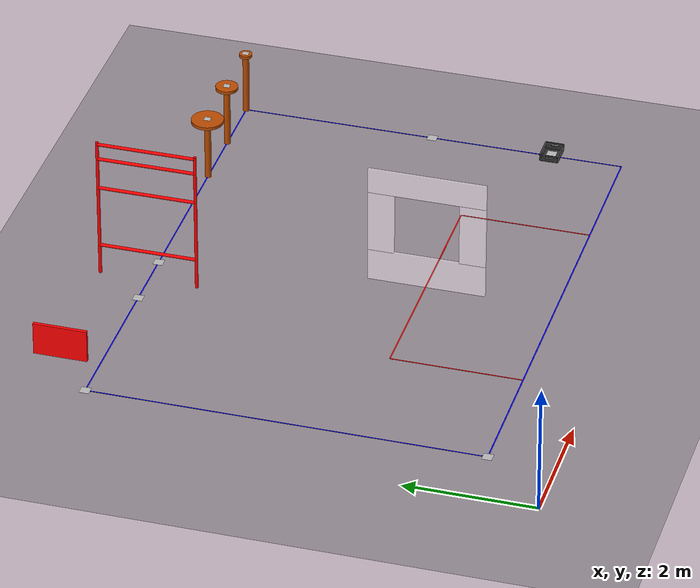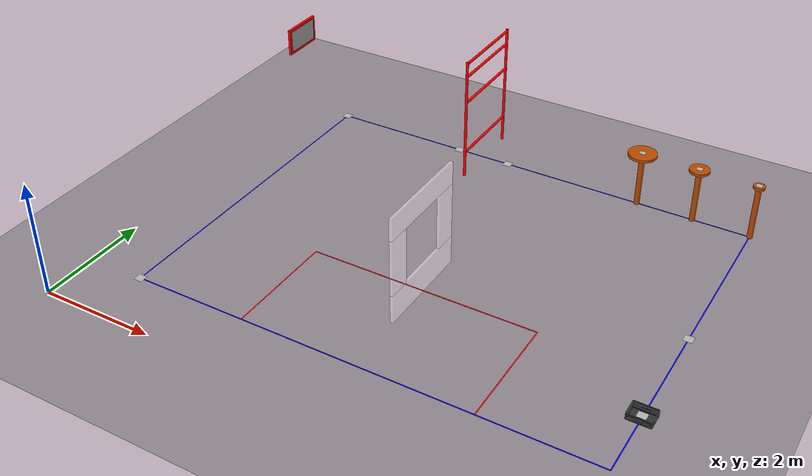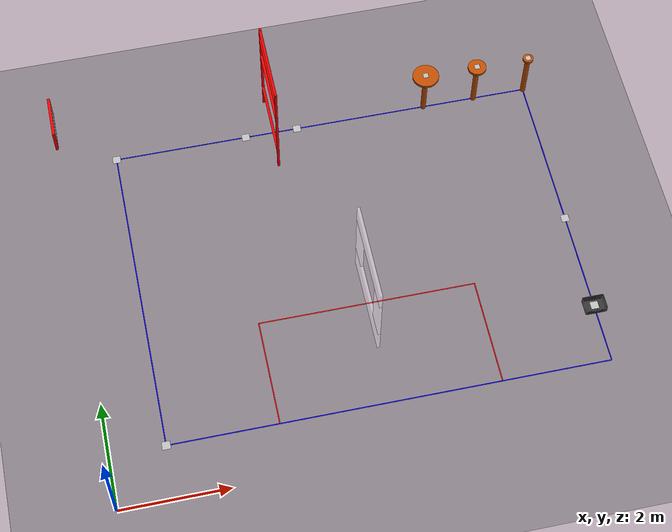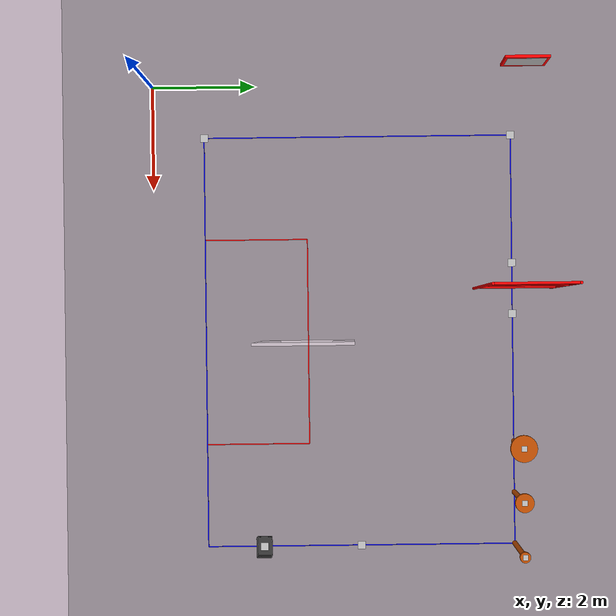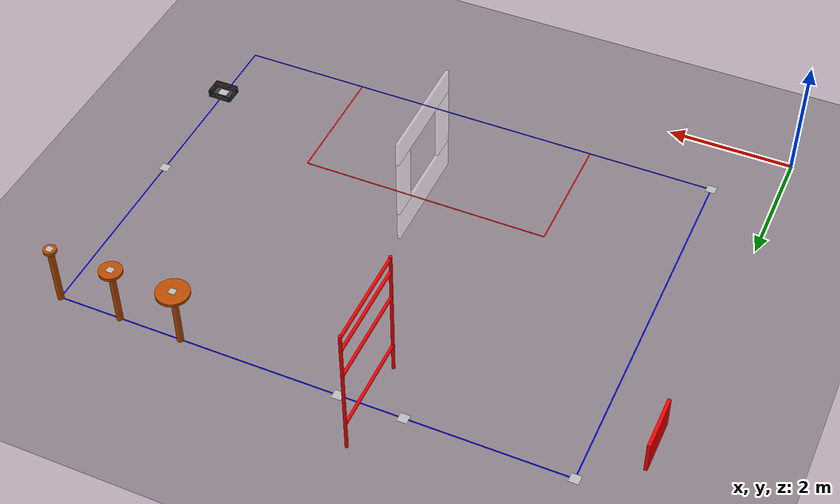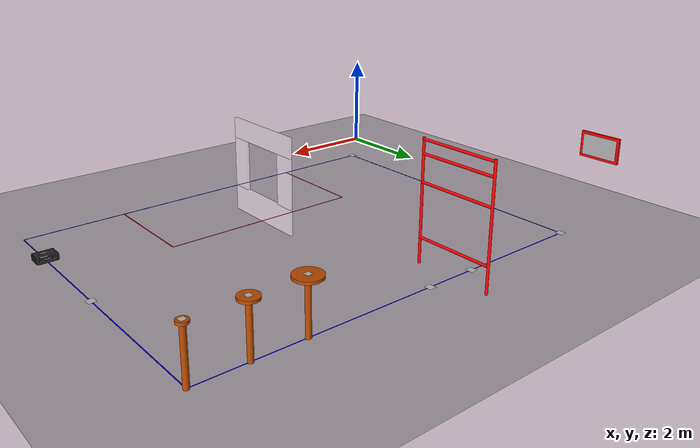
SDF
<sdf version="1.9">
 <world name="indoor">
  <physics type="ode">
   <max_step_size>0.004</max_step_size>
   <real_time_factor>1.0</real_time_factor>
   <real_time_update_rate>250</real_time_update_rate>
  </physics>
  <plugin name="gz::sim::systems::Physics" filename="gz-sim-physics-system"/>
  <plugin name="gz::sim::systems::UserCommands" filename="gz-sim-user-commands-system"/>
  <plugin name="gz::sim::systems::SceneBroadcaster" filename="gz-sim-scene-broadcaster-system"/>
  <plugin name="gz::sim::systems::Contact" filename="gz-sim-contact-system"/>
  <plugin name="gz::sim::systems::Imu" filename="gz-sim-imu-system"/>
  <plugin name="gz::sim::systems::AirPressure" filename="gz-sim-air-pressure-system"/>
  <plugin name="gz::sim::systems::Sensors" filename="gz-sim-sensors-system">
   <render_engine>ogre2</render_engine>
  </plugin>
  <gravity>0 0 -9.8</gravity>
  <magnetic_field>6e-06 2.3e-05 -4.2e-05</magnetic_field>
  <atmosphere type="adiabatic"/>
  <scene>
   <grid>false</grid>
   <ambient>0.4 0.4 0.4 1</ambient>
   <background>0.7 0.7 0.7 1</background>
   <shadows>true</shadows>
  </scene>
  <model name="ground_plane">
   <static>true</static>
   <link name="link">
    <collision name="collision">
     <geometry><plane><normal>0 0 1</normal><size>1 1</size></plane></geometry>
    </collision>
    <visual name="visual">
     <geometry><plane><normal>0 0 1</normal><size>100 100</size></plane></geometry>
     <material><ambient>0.2 0.2 0.2 1</ambient><diffuse>0.2 0.2 0.2 1</diffuse></material>
    </visual>
    <inertial>
     <mass>1</mass>
     <inertia><ixx>1</ixx><ixy>0</ixy><ixz>0</ixz><iyy>1</iyy><iyz>0</iyz><izz>1</izz></inertia>
    </inertial>
   </link>
  </model>
  <light name="sunUTC" type="directional">
   <pose>0 0 500 0 0 0</pose>
   <intensity>1</intensity>
   <direction>0 0 -1</direction>
   <diffuse>0.904 0.904 0.904 1</diffuse>
   <specular>0.271 0.271 0.271 1</specular>
   <attenuation><range>2000</range><linear>0</linear><constant>1</constant><quadratic>0</quadratic></attenuation>
  </light>
  <light name="directional_light1" type="directional">
   <pose>500 0 500 0 0 0</pose>
   <direction>-1 0 -1</direction>
   <intensity>0.5</intensity>
   <diffuse>0.8 0.8 0.8 1</diffuse>
   <specular>0.5 0.5 0.5 1</specular>
  </light>
  <light name="directional_light2" type="directional">
   <pose>0 500 500 0 0 0</pose>
   <direction>0 -1 -1</direction>
   <intensity>0.5</intensity>
   <diffuse>0.8 0.8 0.8 1</diffuse>
   <specular>0.5 0.5 0.5 1</specular>
  </light>
  <light name="directional_light3" type="directional">
   <pose>-500 0 500 0 0 0</pose>
   <direction>-1 0 -1</direction>
   <intensity>0.5</intensity>
   <diffuse>0.8 0.8 0.8 1</diffuse>
   <specular>0.5 0.5 0.5 1</specular>
  </light>
  <light name="directional_light4" type="directional">
   <pose>0 -500 500 0 0 0</pose>
   <direction>0 -1 -1</direction>
   <intensity>0.5</intensity>
   <diffuse>0.8 0.8 0.8 1</diffuse>
   <specular>0.5 0.5 0.5 1</specular>
  </light>
  <model name="aruco100">
   <static>true</static>
   <pose>1 1 0.01 0 0 0</pose>
   <link name="base_aruco100">
    <visual name="visual">
     <geometry><plane><normal>0 0 1</normal><size>0.15 0.15</size></plane></geometry>
     <material><pbr><metal><emissive_map>model://images/5x5_1000-100.png</emissive_map></metal></pbr></material>
    </visual>
   </link>
  </model>
  <model name="aruco105">
   <static>true</static>
   <pose>1 7 0.01 0 0 0</pose>
   <link name="base_aruco105">
    <visual name="visual">
     <geometry><plane><normal>0 0 1</normal><size>0.15 0.15</size></plane></geometry>
     <material><pbr><metal><emissive_map>model://images/5x5_1000-105.png</emissive_map></metal></pbr></material>
    </visual>
   </link>
  </model>
  <model name="aruco200">
   <static>true</static>
   <pose>3.5 7 0.01 0 0 0</pose>
   <link name="base_aruco200">
    <visual name="visual">
     <geometry><plane><normal>0 0 1</normal><size>0.15 0.15</size></plane></geometry>
     <material><pbr><metal><emissive_map>model://images/5x5_1000-200.png</emissive_map></metal></pbr></material>
    </visual>
   </link>
  </model>
  <model name="aruco205">
   <static>true</static>
   <pose>4.5 7 0.01 0 0 0</pose>
   <link name="base_aruco205">
    <visual name="visual">
     <geometry><plane><normal>0 0 1</normal><size>0.15 0.15</size></plane></geometry>
     <material><pbr><metal><emissive_map>model://images/5x5_1000-205.png</emissive_map></metal></pbr></material>
    </visual>
   </link>
  </model>
  <model name="aruco400">
   <static>true</static>
   <pose>9 4 0.01 0 0 0</pose>
   <link name="base_aruco400">
    <visual name="visual">
     <geometry><plane><normal>0 0 1</normal><size>0.15 0.15</size></plane></geometry>
     <material><pbr><metal><emissive_map>model://images/5x5_1000-400.png</emissive_map></metal></pbr></material>
    </visual>
   </link>
  </model>
  <model name="aruco405">
   <static>true</static>
   <pose>9 2.1 0.05 0 0 0</pose>
   <link name="base_aruco405">
    <visual name="visual">
     <geometry><plane><normal>0 0 1</normal><size>0.15 0.15</size></plane></geometry>
     <material><pbr><metal><emissive_map>model://images/5x5_1000-405.png</emissive_map></metal></pbr></material>
    </visual>
   </link>
  </model>
  <model name="red_line">
   <static>true</static>
   <link name="left_edge">
    <pose>3 2 0.005 0 0 1.57079</pose>
    <visual name="visual">
     <geometry><box><size>2 0.019 0.001</size></box></geometry>
     <material><diffuse>1 0 0 1</diffuse></material>
    </visual>
   </link>
   <link name="top_edge">
    <pose>5 3 0.005 0 0 0</pose>
    <visual name="visual">
     <geometry><box><size>4 0.019 0.001</size></box></geometry>
     <material><diffuse>1 0 0 1</diffuse></material>
    </visual>
   </link>
   <link name="right_edge">
    <pose>7 2 0.005 0 0 1.57079</pose>
    <visual name="visual">
     <geometry><box><size>2 0.019 0.001</size></box></geometry>
     <material><diffuse>1 0 0 1</diffuse></material>
    </visual>
   </link>
  </model>
  <model name="blue_line">
   <static>true</static>
   <link name="left_edge">
    <pose>1 4 0.007 0 0 1.57079</pose>
    <visual name="visual">
     <geometry><box><size>6 0.019 0.001</size></box></geometry>
     <material><diffuse>0 0 1 1</diffuse></material>
    </visual>
   </link>
   <link name="top_edge">
    <pose>5 7 0.007 0 0 0</pose>
    <visual name="visual">
     <geometry><box><size>8 0.019 0.001</size></box></geometry>
     <material><diffuse>0 0 1 1</diffuse></material>
    </visual>
   </link>
   <link name="right_edge">
    <pose>9 4 0.007 0 0 1.57079</pose>
    <visual name="visual">
     <geometry><box><size>6 0.019 0.001</size></box></geometry>
     <material><diffuse>0 0 1 1</diffuse></material>
    </visual>
   </link>
   <link name="bottom_edge">
    <pose>5 1 0.007 0 0 0</pose>
    <visual name="visual">
     <geometry><box><size>8 0.019 0.001</size></box></geometry>
     <material><diffuse>0 0 1 1</diffuse></material>
    </visual>
   </link>
  </model>
  <model name="landing_platform1">
   <static>true</static>
   <link name="base">
    <pose>7 7 0.5 0 0 0</pose>
    <visual name="base_visual">
     <geometry><cylinder><radius>0.05</radius><length>1.0</length></cylinder></geometry>
     <material><diffuse>0.729 0.290 0 1</diffuse></material>
    </visual>
    <collision name="base_hitbox">
     <geometry><cylinder><radius>0.05</radius><length>1.0</length></cylinder></geometry>
    </collision>
   </link>
   <link name="top">
    <pose relative_to="base">0 0 0.5 0 0 0</pose>
    <visual name="top_visual">
     <geometry><cylinder><radius>0.25</radius><length>0.05</length></cylinder></geometry>
     <material><diffuse>0.729 0.290 0 1</diffuse></material>
    </visual>
    <collision name="top_hitbox">
     <geometry><cylinder><radius>0.25</radius><length>0.05</length></cylinder></geometry>
    </collision>
   </link>
   <link name="base_aruco300">
    <pose relative_to="base">0 0 0.53 0 0 0</pose>
    <visual name="visual">
     <geometry><plane><normal>0 0 1</normal><size>0.10 0.10</size></plane></geometry>
     <material><pbr><metal><emissive_map>model://images/5x5_1000-300.png</emissive_map></metal></pbr></material>
    </visual>
   </link>
  </model>
  <model name="landing_platform2">
   <static>true</static>
   <link name="base">
    <pose>8 7 0.5 0 0 0</pose>
    <visual name="base_visual">
     <geometry><cylinder><radius>0.05</radius><length>1.0</length></cylinder></geometry>
     <material><diffuse>0.729 0.290 0 1</diffuse></material>
    </visual>
    <collision name="base_hitbox">
     <geometry><cylinder><radius>0.05</radius><length>1.0</length></cylinder></geometry>
    </collision>
   </link>
   <link name="top">
    <pose relative_to="base">0 0 0.5 0 0 0</pose>
    <visual name="top_visual">
     <geometry><cylinder><radius>0.175</radius><length>0.05</length></cylinder></geometry>
     <material><diffuse>0.729 0.290 0 1</diffuse></material>
    </visual>
    <collision name="top_hitbox">
     <geometry><cylinder><radius>0.175</radius><length>0.05</length></cylinder></geometry>
    </collision>
   </link>
   <link name="base_aruco301">
    <pose relative_to="base">0 0 0.53 0 0 0</pose>
    <visual name="visual">
     <geometry><plane><normal>0 0 1</normal><size>0.10 0.10</size></plane></geometry>
     <material><pbr><metal><emissive_map>model://images/5x5_1000-301.png</emissive_map></metal></pbr></material>
    </visual>
   </link>
  </model>
  <model name="landing_platform3">
   <static>true</static>
   <link name="base">
    <pose>9 7 0.5 0 0 0</pose>
    <visual name="base_visual">
     <geometry><cylinder><radius>0.05</radius><length>1.0</length></cylinder></geometry>
     <material><diffuse>0.729 0.290 0 1</diffuse></material>
    </visual>
    <collision name="base_hitbox">
     <geometry><cylinder><radius>0.05</radius><length>1.0</length></cylinder></geometry>
    </collision>
   </link>
   <link name="top">
    <pose relative_to="base">0 0 0.5 0 0 0</pose>
    <visual name="top_visual">
     <geometry><cylinder><radius>0.1</radius><length>0.05</length></cylinder></geometry>
     <material><diffuse>0.729 0.290 0 1</diffuse></material>
    </visual>
    <collision name="top_hitbox">
     <geometry><cylinder><radius>0.1</radius><length>0.05</length></cylinder></geometry>
    </collision>
   </link>
   <link name="base_aruco302">
    <pose relative_to="base">0 0 0.53 0 0 0</pose>
    <visual name="visual">
     <geometry><plane><normal>0 0 1</normal><size>0.10 0.10</size></plane></geometry>
     <material><pbr><metal><emissive_map>model://images/5x5_1000-302.png</emissive_map></metal></pbr></material>
    </visual>
   </link>
  </model>
  <model name="ventana">
   <static>true</static>
   <link name="base">
    <pose>4 7 1.5 1.57079 0 0</pose>
    <visual name="100cm_up_bar">
     <geometry><cylinder><radius>0.025</radius><length>1.5</length></cylinder></geometry>
     <material><diffuse>1 0 0 1</diffuse></material>
    </visual>
    <collision name="100cm_up_bar_hitbox">
     <geometry><cylinder><radius>0.025</radius><length>1.5</length></cylinder></geometry>
    </collision>
   </link>
   <link name="horizontalbar1">
    <pose relative_to="base">0 0.5 0 0 0 0</pose>
    <visual name="50cm_up_bar">
     <geometry><cylinder><radius>0.025</radius><length>1.5</length></cylinder></geometry>
     <material><diffuse>1 0 0 1</diffuse></material>
    </visual>
    <collision name="50cm_up_bar_hitbox">
     <geometry><cylinder><radius>0.025</radius><length>1.5</length></cylinder></geometry>
    </collision>
   </link>
   <link name="horizontalbar2">
    <pose relative_to="base">0 0.75 0 0 0 0</pose>
    <visual name="25cm_up_bar">
     <geometry><cylinder><radius>0.025</radius><length>1.5</length></cylinder></geometry>
     <material><diffuse>1 0 0 1</diffuse></material>
    </visual>
    <collision name="25cm_up_bar_hitbox">
     <geometry><cylinder><radius>0.025</radius><length>1.5</length></cylinder></geometry>
    </collision>
   </link>
   <link name="horizontalbar3">
    <pose relative_to="base">0 -1 0 0 0 0</pose>
    <visual name="25cm_up_bar">
     <geometry><cylinder><radius>0.025</radius><length>1.5</length></cylinder></geometry>
     <material><diffuse>1 0 0 1</diffuse></material>
    </visual>
    <collision name="25cm_up_bar_hitbox">
     <geometry><cylinder><radius>0.025</radius><length>1.5</length></cylinder></geometry>
    </collision>
   </link>
   <link name="rightbar">
    <pose relative_to="base">0 -0.35 0.75 1.57079 0 0</pose>
    <visual name="right_bar">
     <geometry><cylinder><radius>0.025</radius><length>2.275</length></cylinder></geometry>
     <material><diffuse>1 0 0 1</diffuse></material>
    </visual>
    <collision name="right_bar_hitbox">
     <geometry><cylinder><radius>0.025</radius><length>2.25</length></cylinder></geometry>
    </collision>
   </link>
   <link name="leftbar">
    <pose relative_to="base">0 -0.35 -0.75 1.57079 0 0</pose>
    <visual name="left_bar">
     <geometry><cylinder><radius>0.025</radius><length>2.275</length></cylinder></geometry>
     <material><diffuse>1 0 0 1</diffuse></material>
    </visual>
    <collision name="left_bar_hitbox">
     <geometry><cylinder><radius>0.025</radius><length>2.25</length></cylinder></geometry>
    </collision>
   </link>
  </model>
  <model name="container">
   <pose>9 2.1 0.01 1.57079 0 0</pose>
   <static>true</static>
   <link name="body">
    <visual name="visual">
     <geometry><mesh><uri>stls/container10L.stl</uri><scale>0.001 0.001 0.001</scale></mesh></geometry>
     <material><diffuse>0.2 0.2 0.2 0.98</diffuse></material>
    </visual>
   </link>
  </model>
  <model name="tv">
   <static>1</static>
   <pose>0 7 1.5 0 0 0</pose>
   <link name="tv_link">
    <visual name="tv_visual">
     <geometry><box><size>0.05 0.80 0.50</size></box></geometry>
     <material><diffuse>1 0 0 1</diffuse></material>
    </visual>
    <collision name="tv_hitbox"><geometry><box><size>0.05 0.80 0.50</size></box></geometry></collision>
   </link>
   <link name="image_link">
    <pose relative_to="tv_link">0.021 0 0 0 0 0</pose>
    <visual name="tv_visual">
     <geometry><box><size>0.01 0.70 0.40</size></box></geometry>
     <material><pbr><metal><emissive_map>model://images/abeja.jpeg</emissive_map></metal></pbr></material>
    </visual>
   </link>
  </model>
  <model name="ventana_acrilico">
   <static>true</static>
   <link name="base">
    <pose>5 3 -0.5 0 0 0</pose>
    <visual name="base_visual">
     <geometry><box><size>0.05 1.80 2</size></box></geometry>
     <material><diffuse>0.9 0.9 0.9 0.2</diffuse></material>
    </visual>
    <collision name="base_hitbox"><geometry><box><size>0.05 1.80 2</size></box></geometry></collision>
   </link>
   <link name="top">
    <pose relative_to="base">0 0 2.2 0 0 0</pose>
    <visual name="top_visual">
     <geometry><box><size>0.05 1.80 0.4</size></box></geometry>
     <material><diffuse>0.9 0.9 0.9 0.2</diffuse></material>
    </visual>
    <collision name="top_hitbox"><geometry><box><size>0.05 1.80 0.4</size></box></geometry></collision>
   </link>
   <link name="left">
    <pose relative_to="base">0 -0.7 1.5 0 0 0</pose>
    <visual name="left_visual">
     <geometry><box><size>0.05 0.4 1</size></box></geometry>
     <material><diffuse>0.9 0.9 0.9 0.2</diffuse></material>
    </visual>
    <collision name="left_hitbox"><geometry><box><size>0.05 0.4 1</size></box></geometry></collision>
   </link>
   <link name="right">
    <pose relative_to="base">0 0.7 1.5 0 0 0</pose>
    <visual name="right_visual">
     <geometry><box><size>0.05 0.4 1</size></box></geometry>
     <material><diffuse>0.9 0.9 0.9 0.2</diffuse></material>
    </visual>
    <collision name="right_hitbox"><geometry><box><size>0.05 0.4 1</size></box></geometry></collision>
   </link>
  </model>
 </world>
</sdf>
